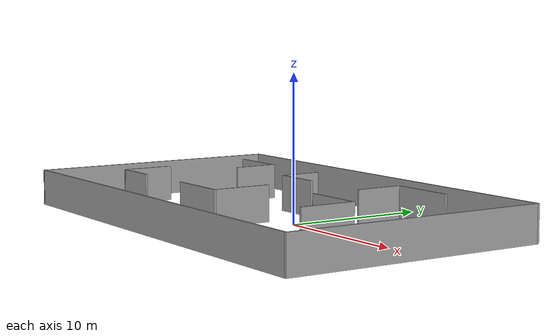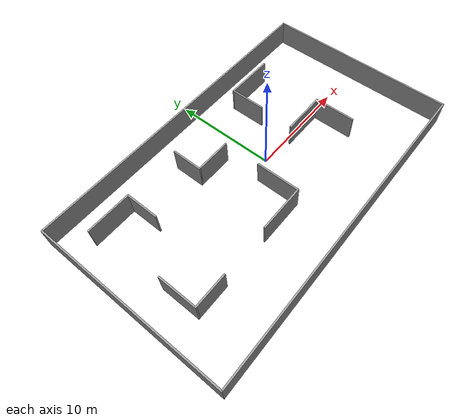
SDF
<?xml version='1.0'?>
<sdf version='1.7'>
  <model name='my_model'>
    <pose>-1.76279 -0.7246 0 0 -0 0</pose>
    <link name='Wall_0'>
      <collision name='Wall_0_Collision'>
        <geometry>
          <box>
            <size>18.5 0.15 2.5</size>
          </box>
        </geometry>
        <pose>0 0 1.25 0 -0 0</pose>
      </collision>
      <visual name='Wall_0_Visual'>
        <pose>0 0 1.25 0 -0 0</pose>
        <geometry>
          <box>
            <size>18.5 0.15 2.5</size>
          </box>
        </geometry>
        <material>
          <script>
            <uri>file://media/materials/scripts/gazebo.material</uri>
            <name>Gazebo/Grey</name>
          </script>
          <ambient>1 1 1 1</ambient>
        </material>
        <meta>
          <layer>0</layer>
        </meta>
      </visual>
      <pose>-15.55 0 0 0 -0 -1.5708</pose>
    </link>
    <link name='Wall_1'>
      <collision name='Wall_1_Collision'>
        <geometry>
          <box>
            <size>31.25 0.15 2.5</size>
          </box>
        </geometry>
        <pose>0 0 1.25 0 -0 0</pose>
      </collision>
      <visual name='Wall_1_Visual'>
        <pose>0 0 1.25 0 -0 0</pose>
        <geometry>
          <box>
            <size>31.25 0.15 2.5</size>
          </box>
        </geometry>
        <material>
          <script>
            <uri>file://media/materials/scripts/gazebo.material</uri>
            <name>Gazebo/Grey</name>
          </script>
          <ambient>1 1 1 1</ambient>
        </material>
        <meta>
          <layer>0</layer>
        </meta>
      </visual>
      <pose>0 -9.175 0 0 -0 0</pose>
    </link>
    <link name='Wall_11'>
      <collision name='Wall_11_Collision'>
        <geometry>
          <box>
            <size>4.75 0.15 2.5</size>
          </box>
        </geometry>
        <pose>0 0 1.25 0 -0 0</pose>
      </collision>
      <visual name='Wall_11_Visual'>
        <pose>0 0 1.25 0 -0 0</pose>
        <geometry>
          <box>
            <size>4.75 0.15 2.5</size>
          </box>
        </geometry>
        <material>
          <script>
            <uri>file://media/materials/scripts/gazebo.material</uri>
            <name>Gazebo/Grey</name>
          </script>
          <ambient>1 1 1 1</ambient>
        </material>
        <meta>
          <layer>0</layer>
        </meta>
      </visual>
      <pose>7.19728 7.06427 0 0 -0 3.14159</pose>
    </link>
    <link name='Wall_12'>
      <collision name='Wall_12_Collision'>
        <geometry>
          <box>
            <size>3.5 0.15 2.5</size>
          </box>
        </geometry>
        <pose>0 0 1.25 0 -0 0</pose>
      </collision>
      <visual name='Wall_12_Visual'>
        <pose>0 0 1.25 0 -0 0</pose>
        <geometry>
          <box>
            <size>3.5 0.15 2.5</size>
          </box>
        </geometry>
        <material>
          <script>
            <uri>file://media/materials/scripts/gazebo.material</uri>
            <name>Gazebo/Grey</name>
          </script>
          <ambient>1 1 1 1</ambient>
        </material>
        <meta>
          <layer>0</layer>
        </meta>
      </visual>
      <pose>4.89728 5.38927 0 0 -0 -1.5708</pose>
    </link>
    <link name='Wall_14'>
      <collision name='Wall_14_Collision'>
        <geometry>
          <box>
            <size>3.75 0.15 2.5</size>
          </box>
        </geometry>
        <pose>0 0 1.25 0 -0 0</pose>
      </collision>
      <visual name='Wall_14_Visual'>
        <pose>0 0 1.25 0 -0 0</pose>
        <geometry>
          <box>
            <size>3.75 0.15 2.5</size>
          </box>
        </geometry>
        <material>
          <script>
            <uri>file://media/materials/scripts/gazebo.material</uri>
            <name>Gazebo/Grey</name>
          </script>
          <ambient>1 1 1 1</ambient>
        </material>
        <meta>
          <layer>0</layer>
        </meta>
      </visual>
      <pose>-12.595 -2.36952 0 0 -0 -1.5708</pose>
    </link>
    <link name='Wall_15'>
      <collision name='Wall_15_Collision'>
        <geometry>
          <box>
            <size>3.25 0.15 2.5</size>
          </box>
        </geometry>
        <pose>0 0 1.25 0 -0 0</pose>
      </collision>
      <visual name='Wall_15_Visual'>
        <pose>0 0 1.25 0 -0 0</pose>
        <geometry>
          <box>
            <size>3.25 0.15 2.5</size>
          </box>
        </geometry>
        <material>
          <script>
            <uri>file://media/materials/scripts/gazebo.material</uri>
            <name>Gazebo/Grey</name>
          </script>
          <ambient>1 1 1 1</ambient>
        </material>
        <meta>
          <layer>0</layer>
        </meta>
      </visual>
      <pose>-11.045 -4.16952 0 0 -0 0</pose>
    </link>
    <link name='Wall_17'>
      <collision name='Wall_17_Collision'>
        <geometry>
          <box>
            <size>4.25 0.15 2.5</size>
          </box>
        </geometry>
        <pose>0 0 1.25 0 -0 0</pose>
      </collision>
      <visual name='Wall_17_Visual'>
        <pose>0 0 1.25 0 -0 0</pose>
        <geometry>
          <box>
            <size>4.25 0.15 2.5</size>
          </box>
        </geometry>
        <material>
          <script>
            <uri>file://media/materials/scripts/gazebo.material</uri>
            <name>Gazebo/Grey</name>
          </script>
          <ambient>1 1 1 1</ambient>
        </material>
        <meta>
          <layer>0</layer>
        </meta>
      </visual>
      <pose>-0.247238 -2.05666 0 0 -0 -1.5708</pose>
    </link>
    <link name='Wall_18'>
      <collision name='Wall_18_Collision'>
        <geometry>
          <box>
            <size>4.5 0.15 2.5</size>
          </box>
        </geometry>
        <pose>0 0 1.25 0 -0 0</pose>
      </collision>
      <visual name='Wall_18_Visual'>
        <pose>0 0 1.25 0 -0 0</pose>
        <geometry>
          <box>
            <size>4.5 0.15 2.5</size>
          </box>
        </geometry>
        <material>
          <script>
            <uri>file://media/materials/scripts/gazebo.material</uri>
            <name>Gazebo/Grey</name>
          </script>
          <ambient>1 1 1 1</ambient>
        </material>
        <meta>
          <layer>0</layer>
        </meta>
      </visual>
      <pose>-2.42224 -4.10666 0 0 -0 3.14159</pose>
    </link>
    <link name='Wall_2'>
      <collision name='Wall_2_Collision'>
        <geometry>
          <box>
            <size>18.5 0.15 2.5</size>
          </box>
        </geometry>
        <pose>0 0 1.25 0 -0 0</pose>
      </collision>
      <visual name='Wall_2_Visual'>
        <pose>0 0 1.25 0 -0 0</pose>
        <geometry>
          <box>
            <size>18.5 0.15 2.5</size>
          </box>
        </geometry>
        <material>
          <script>
            <uri>file://media/materials/scripts/gazebo.material</uri>
            <name>Gazebo/Grey</name>
          </script>
          <ambient>1 1 1 1</ambient>
        </material>
        <meta>
          <layer>0</layer>
        </meta>
      </visual>
      <pose>15.55 0 0 0 -0 1.5708</pose>
    </link>
    <link name='Wall_20'>
      <collision name='Wall_20_Collision'>
        <geometry>
          <box>
            <size>4.25 0.15 2.5</size>
          </box>
        </geometry>
        <pose>0 0 1.25 0 -0 0</pose>
      </collision>
      <visual name='Wall_20_Visual'>
        <pose>0 0 1.25 0 -0 0</pose>
        <geometry>
          <box>
            <size>4.25 0.15 2.5</size>
          </box>
        </geometry>
        <material>
          <script>
            <uri>file://media/materials/scripts/gazebo.material</uri>
            <name>Gazebo/Grey</name>
          </script>
          <ambient>1 1 1 1</ambient>
        </material>
        <meta>
          <layer>0</layer>
        </meta>
      </visual>
      <pose>6.79815 0.274773 0 0 -0 0</pose>
    </link>
    <link name='Wall_21'>
      <collision name='Wall_21_Collision'>
        <geometry>
          <box>
            <size>4 0.15 2.5</size>
          </box>
        </geometry>
        <pose>0 0 1.25 0 -0 0</pose>
      </collision>
      <visual name='Wall_21_Visual'>
        <pose>0 0 1.25 0 -0 0</pose>
        <geometry>
          <box>
            <size>4 0.15 2.5</size>
          </box>
        </geometry>
        <material>
          <script>
            <uri>file://media/materials/scripts/gazebo.material</uri>
            <name>Gazebo/Grey</name>
          </script>
          <ambient>1 1 1 1</ambient>
        </material>
        <meta>
          <layer>0</layer>
        </meta>
      </visual>
      <pose>8.84815 -1.65023 0 0 -0 -1.5708</pose>
    </link>
    <link name='Wall_3'>
      <collision name='Wall_3_Collision'>
        <geometry>
          <box>
            <size>31.25 0.15 2.5</size>
          </box>
        </geometry>
        <pose>0 0 1.25 0 -0 0</pose>
      </collision>
      <visual name='Wall_3_Visual'>
        <pose>0 0 1.25 0 -0 0</pose>
        <geometry>
          <box>
            <size>31.25 0.15 2.5</size>
          </box>
        </geometry>
        <material>
          <script>
            <uri>file://media/materials/scripts/gazebo.material</uri>
            <name>Gazebo/Grey</name>
          </script>
          <ambient>1 1 1 1</ambient>
        </material>
        <meta>
          <layer>0</layer>
        </meta>
      </visual>
      <pose>0 9.175 0 0 -0 3.14159</pose>
    </link>
    <link name='Wall_5'>
      <collision name='Wall_5_Collision'>
        <geometry>
          <box>
            <size>4.25 0.15 2.5</size>
          </box>
        </geometry>
        <pose>0 0 1.25 0 -0 0</pose>
      </collision>
      <visual name='Wall_5_Visual'>
        <pose>0 0 1.25 0 -0 0</pose>
        <geometry>
          <box>
            <size>4.25 0.15 2.5</size>
          </box>
        </geometry>
        <material>
          <script>
            <uri>file://media/materials/scripts/gazebo.material</uri>
            <name>Gazebo/Grey</name>
          </script>
          <ambient>1 1 1 1</ambient>
        </material>
        <meta>
          <layer>0</layer>
        </meta>
      </visual>
      <pose>-11.2486 6.3607 0 0 -0 0</pose>
    </link>
    <link name='Wall_6'>
      <collision name='Wall_6_Collision'>
        <geometry>
          <box>
            <size>3.25 0.15 2.5</size>
          </box>
        </geometry>
        <pose>0 0 1.25 0 -0 0</pose>
      </collision>
      <visual name='Wall_6_Visual'>
        <pose>0 0 1.25 0 -0 0</pose>
        <geometry>
          <box>
            <size>3.25 0.15 2.5</size>
          </box>
        </geometry>
        <material>
          <script>
            <uri>file://media/materials/scripts/gazebo.material</uri>
            <name>Gazebo/Grey</name>
          </script>
          <ambient>1 1 1 1</ambient>
        </material>
        <meta>
          <layer>0</layer>
        </meta>
      </visual>
      <pose>-9.19856 4.8107 0 0 -0 -1.5708</pose>
    </link>
    <link name='Wall_8'>
      <collision name='Wall_8_Collision'>
        <geometry>
          <box>
            <size>3 0.15 2.5</size>
          </box>
        </geometry>
        <pose>0 0 1.25 0 -0 0</pose>
      </collision>
      <visual name='Wall_8_Visual'>
        <pose>0 0 1.25 0 -0 0</pose>
        <geometry>
          <box>
            <size>3 0.15 2.5</size>
          </box>
        </geometry>
        <material>
          <script>
            <uri>file://media/materials/scripts/gazebo.material</uri>
            <name>Gazebo/Grey</name>
          </script>
          <ambient>1 1 1 1</ambient>
        </material>
        <meta>
          <layer>0</layer>
        </meta>
      </visual>
      <pose>-3.69476 5.00606 0 0 -0 -1.5708</pose>
    </link>
    <link name='Wall_9'>
      <collision name='Wall_9_Collision'>
        <geometry>
          <box>
            <size>3.5 0.15 2.5</size>
          </box>
        </geometry>
        <pose>0 0 1.25 0 -0 0</pose>
      </collision>
      <visual name='Wall_9_Visual'>
        <pose>0 0 1.25 0 -0 0</pose>
        <geometry>
          <box>
            <size>3.5 0.15 2.5</size>
          </box>
        </geometry>
        <material>
          <script>
            <uri>file://media/materials/scripts/gazebo.material</uri>
            <name>Gazebo/Grey</name>
          </script>
          <ambient>1 1 1 1</ambient>
        </material>
        <meta>
          <layer>0</layer>
        </meta>
      </visual>
      <pose>-2.01976 3.58106 0 0 -0 0</pose>
    </link>
    <static>1</static>
  </model>
</sdf>
